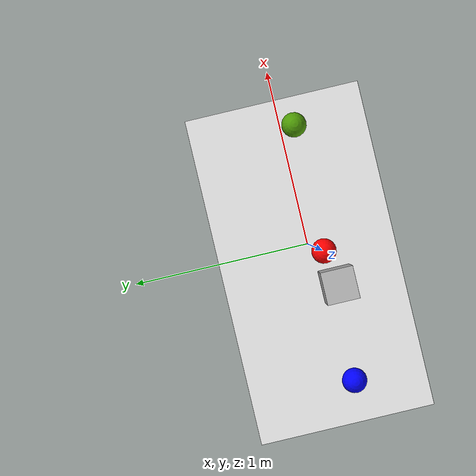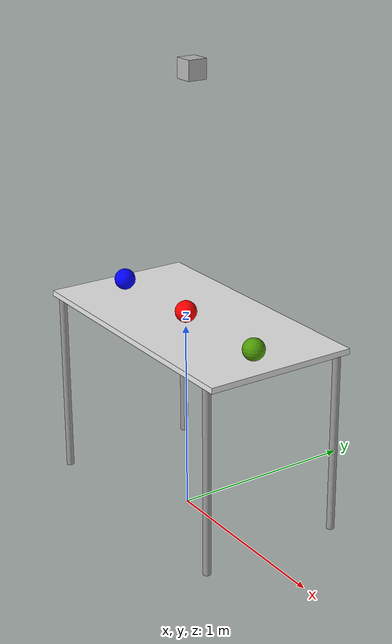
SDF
<?xml version='1.0'?>
<sdf version='1.7'>
  <model name='table_3balls_camera_v2'>
    <link name='Ball_Blue'>
      <inertial>
        <mass>0.0013865</mass>
        <inertia>
          <ixx>1.72e-06</ixx>
          <ixy>0</ixy>
          <ixz>0</ixz>
          <iyy>1.72e-06</iyy>
          <iyz>0</iyz>
          <izz>1.72e-06</izz>
        </inertia>
        <pose>0 0 0 0 -0 0</pose>
      </inertial>
      <pose>-0.591225 0 1.07207 0 -0 0</pose>
      <self_collide>0</self_collide>
      <enable_wind>0</enable_wind>
      <kinematic>0</kinematic>
      <gravity>1</gravity>
      <visual name='visual'>
        <pose>0 0 0 0 -0 0</pose>
        <geometry>
          <sphere>
            <radius>0.0557538</radius>
          </sphere>
        </geometry>
        <material>
          <lighting>1</lighting>
          <script>
            <uri>file://media/materials/scripts/gazebo.material</uri>
            <name>Gazebo/Grey</name>
          </script>
          <shader type='pixel'>
            <normal_map>__default__</normal_map>
          </shader>
          <diffuse>0 0 1 0</diffuse>
          <ambient>0.3 0.3 0.3 1</ambient>
          <specular>0.01 0.01 0.01 1</specular>
          <emissive>0 0 0 1</emissive>
        </material>
        <transparency>0</transparency>
        <cast_shadows>1</cast_shadows>
      </visual>
      <collision name='collision'>
        <laser_retro>0</laser_retro>
        <max_contacts>10</max_contacts>
        <pose>0 0 0 0 -0 0</pose>
        <geometry>
          <sphere>
            <radius>0.055754</radius>
          </sphere>
        </geometry>
        <surface>
          <friction>
            <ode>
              <mu>1</mu>
              <mu2>1</mu2>
              <fdir1>0 0 0</fdir1>
              <slip1>0</slip1>
              <slip2>0</slip2>
            </ode>
            <torsional>
              <coefficient>1</coefficient>
              <patch_radius>0</patch_radius>
              <surface_radius>0</surface_radius>
              <use_patch_radius>1</use_patch_radius>
              <ode>
                <slip>0</slip>
              </ode>
            </torsional>
          </friction>
          <bounce>
            <restitution_coefficient>0</restitution_coefficient>
            <threshold>1e+06</threshold>
          </bounce>
          <contact>
            <collide_without_contact>0</collide_without_contact>
            <collide_without_contact_bitmask>1</collide_without_contact_bitmask>
            <collide_bitmask>1</collide_bitmask>
            <ode>
              <soft_cfm>0</soft_cfm>
              <soft_erp>0.2</soft_erp>
              <kp>1e+13</kp>
              <kd>1</kd>
              <max_vel>0.01</max_vel>
              <min_depth>0</min_depth>
            </ode>
            <bullet>
              <split_impulse>1</split_impulse>
              <split_impulse_penetration_threshold>-0.01</split_impulse_penetration_threshold>
              <soft_cfm>0</soft_cfm>
              <soft_erp>0.2</soft_erp>
              <kp>1e+13</kp>
              <kd>1</kd>
            </bullet>
          </contact>
        </surface>
      </collision>
    </link>
    <link name='Ball_green'>
      <inertial>
        <mass>0.0013865</mass>
        <inertia>
          <ixx>1.72e-06</ixx>
          <ixy>0</ixy>
          <ixz>0</ixz>
          <iyy>1.72e-06</iyy>
          <iyz>0</iyz>
          <izz>1.72e-06</izz>
        </inertia>
        <pose>0 0 0 0 -0 0</pose>
      </inertial>
      <pose>0.575583 0 1.07792 0 -0 0</pose>
      <self_collide>0</self_collide>
      <enable_wind>0</enable_wind>
      <kinematic>0</kinematic>
      <gravity>1</gravity>
      <visual name='visual'>
        <pose>0 0 0 0 -0 0</pose>
        <geometry>
          <sphere>
            <radius>0.0557538</radius>
          </sphere>
        </geometry>
        <material>
          <lighting>1</lighting>
          <script>
            <uri>file://media/materials/scripts/gazebo.material</uri>
            <name>Gazebo/Grey</name>
          </script>
          <shader type='pixel'>
            <normal_map>__default__</normal_map>
          </shader>
          <ambient>0 1 0 0</ambient>
          <diffuse>0.306 0.604 0.024 1</diffuse>
          <specular>0.01 0.01 0.01 1</specular>
          <emissive>0 0 0 1</emissive>
        </material>
        <transparency>0</transparency>
        <cast_shadows>1</cast_shadows>
      </visual>
      <collision name='collision'>
        <laser_retro>0</laser_retro>
        <max_contacts>10</max_contacts>
        <pose>0 0 0 0 -0 0</pose>
        <geometry>
          <sphere>
            <radius>0.055754</radius>
          </sphere>
        </geometry>
        <surface>
          <friction>
            <ode>
              <mu>1</mu>
              <mu2>1</mu2>
              <fdir1>0 0 0</fdir1>
              <slip1>0</slip1>
              <slip2>0</slip2>
            </ode>
            <torsional>
              <coefficient>1</coefficient>
              <patch_radius>0</patch_radius>
              <surface_radius>0</surface_radius>
              <use_patch_radius>1</use_patch_radius>
              <ode>
                <slip>0</slip>
              </ode>
            </torsional>
          </friction>
          <bounce>
            <restitution_coefficient>0</restitution_coefficient>
            <threshold>1e+06</threshold>
          </bounce>
          <contact>
            <collide_without_contact>0</collide_without_contact>
            <collide_without_contact_bitmask>1</collide_without_contact_bitmask>
            <collide_bitmask>1</collide_bitmask>
            <ode>
              <soft_cfm>0</soft_cfm>
              <soft_erp>0.2</soft_erp>
              <kp>1e+13</kp>
              <kd>1</kd>
              <max_vel>0.01</max_vel>
              <min_depth>0</min_depth>
            </ode>
            <bullet>
              <split_impulse>1</split_impulse>
              <split_impulse_penetration_threshold>-0.01</split_impulse_penetration_threshold>
              <soft_cfm>0</soft_cfm>
              <soft_erp>0.2</soft_erp>
              <kp>1e+13</kp>
              <kd>1</kd>
            </bullet>
          </contact>
        </surface>
      </collision>
    </link>
    <link name='ball_red'>
      <inertial>
        <mass>0.0013865</mass>
        <inertia>
          <ixx>1.72e-06</ixx>
          <ixy>0</ixy>
          <ixz>0</ixz>
          <iyy>1.72e-06</iyy>
          <iyz>0</iyz>
          <izz>1.72e-06</izz>
        </inertia>
        <pose>0 0 0 0 -0 0</pose>
      </inertial>
      <pose>0 0 1.07989 0 -0 0</pose>
      <self_collide>0</self_collide>
      <enable_wind>0</enable_wind>
      <kinematic>0</kinematic>
      <gravity>1</gravity>
      <visual name='visual'>
        <pose>0 0 0 0 -0 0</pose>
        <geometry>
          <sphere>
            <radius>0.0557538</radius>
          </sphere>
        </geometry>
        <material>
          <lighting>1</lighting>
          <script>
            <uri>file://media/materials/scripts/gazebo.material</uri>
            <name>Gazebo/Grey</name>
          </script>
          <shader type='pixel'>
            <normal_map>__default__</normal_map>
          </shader>
          <ambient>1 0 0 0</ambient>
          <diffuse>0.7 0.7 0.7 1</diffuse>
          <specular>0.01 0.01 0.01 1</specular>
          <emissive>0 0 0 1</emissive>
        </material>
        <transparency>0</transparency>
        <cast_shadows>1</cast_shadows>
      </visual>
      <collision name='collision'>
        <laser_retro>0</laser_retro>
        <max_contacts>10</max_contacts>
        <pose>0 0 0 0 -0 0</pose>
        <geometry>
          <sphere>
            <radius>0.055754</radius>
          </sphere>
        </geometry>
        <surface>
          <friction>
            <ode>
              <mu>1</mu>
              <mu2>1</mu2>
              <fdir1>0 0 0</fdir1>
              <slip1>0</slip1>
              <slip2>0</slip2>
            </ode>
            <torsional>
              <coefficient>1</coefficient>
              <patch_radius>0</patch_radius>
              <surface_radius>0</surface_radius>
              <use_patch_radius>1</use_patch_radius>
              <ode>
                <slip>0</slip>
              </ode>
            </torsional>
          </friction>
          <bounce>
            <restitution_coefficient>0</restitution_coefficient>
            <threshold>1e+06</threshold>
          </bounce>
          <contact>
            <collide_without_contact>0</collide_without_contact>
            <collide_without_contact_bitmask>1</collide_without_contact_bitmask>
            <collide_bitmask>1</collide_bitmask>
            <ode>
              <soft_cfm>0</soft_cfm>
              <soft_erp>0.2</soft_erp>
              <kp>1e+13</kp>
              <kd>1</kd>
              <max_vel>0.01</max_vel>
              <min_depth>0</min_depth>
            </ode>
            <bullet>
              <split_impulse>1</split_impulse>
              <split_impulse_penetration_threshold>-0.01</split_impulse_penetration_threshold>
              <soft_cfm>0</soft_cfm>
              <soft_erp>0.2</soft_erp>
              <kp>1e+13</kp>
              <kd>1</kd>
            </bullet>
          </contact>
        </surface>
      </collision>
    </link>
    <link name='table'>
      <self_collide>0</self_collide>
      <enable_wind>0</enable_wind>
      <kinematic>0</kinematic>
      <pose>-0.040807 0.07129 0 0 -0 0</pose>
      <visual name='visual1'>
        <pose>0 0 1 0 -0 0</pose>
        <geometry>
          <box>
            <size>1.5 0.8 0.03</size>
          </box>
        </geometry>
        <material>
          <script>
            <uri>file://media/materials/scripts/gazebo.material</uri>
            <name>Gazebo/White</name>
          </script>
          <shader type='pixel'/>
          <emissive>0 0 0 1</emissive>
        </material>
        <transparency>0</transparency>
        <cast_shadows>1</cast_shadows>
      </visual>
      <visual name='back_right_leg'>
        <pose>-0.68 -0.38 0.5 0 -0 0</pose>
        <geometry>
          <cylinder>
            <radius>0.02</radius>
            <length>1</length>
          </cylinder>
        </geometry>
        <material>
          <script>
            <uri>file://media/materials/scripts/gazebo.material</uri>
            <name>Gazebo/Grey</name>
          </script>
          <shader type='pixel'/>
          <emissive>0 0 0 1</emissive>
        </material>
        <transparency>0</transparency>
        <cast_shadows>1</cast_shadows>
      </visual>
      <visual name='back_left_leg'>
        <pose>-0.68 0.38 0.5 0 -0 0</pose>
        <geometry>
          <cylinder>
            <radius>0.02</radius>
            <length>1</length>
          </cylinder>
        </geometry>
        <material>
          <script>
            <uri>file://media/materials/scripts/gazebo.material</uri>
            <name>Gazebo/Grey</name>
          </script>
          <shader type='pixel'/>
          <emissive>0 0 0 1</emissive>
        </material>
        <transparency>0</transparency>
        <cast_shadows>1</cast_shadows>
      </visual>
      <visual name='front_left_leg'>
        <pose>0.68 0.38 0.5 0 -0 0</pose>
        <geometry>
          <cylinder>
            <radius>0.02</radius>
            <length>1</length>
          </cylinder>
        </geometry>
        <material>
          <script>
            <uri>file://media/materials/scripts/gazebo.material</uri>
            <name>Gazebo/Grey</name>
          </script>
          <shader type='pixel'/>
          <emissive>0 0 0 1</emissive>
        </material>
        <transparency>0</transparency>
        <cast_shadows>1</cast_shadows>
      </visual>
      <visual name='front_right_leg'>
        <pose>0.68 -0.38 0.5 0 -0 0</pose>
        <geometry>
          <cylinder>
            <radius>0.02</radius>
            <length>1</length>
          </cylinder>
        </geometry>
        <material>
          <script>
            <uri>file://media/materials/scripts/gazebo.material</uri>
            <name>Gazebo/Grey</name>
          </script>
          <shader type='pixel'/>
          <emissive>0 0 0 1</emissive>
        </material>
        <transparency>0</transparency>
        <cast_shadows>1</cast_shadows>
      </visual>
      <collision name='back_left_leg'>
        <laser_retro>0</laser_retro>
        <max_contacts>10</max_contacts>
        <pose>-0.68 0.38 0.5 0 -0 0</pose>
        <geometry>
          <cylinder>
            <radius>0.02</radius>
            <length>1</length>
          </cylinder>
        </geometry>
        <surface>
          <friction>
            <ode>
              <mu>1</mu>
              <mu2>1</mu2>
              <fdir1>0 0 0</fdir1>
              <slip1>0</slip1>
              <slip2>0</slip2>
            </ode>
            <torsional>
              <coefficient>1</coefficient>
              <patch_radius>0</patch_radius>
              <surface_radius>0</surface_radius>
              <use_patch_radius>1</use_patch_radius>
              <ode>
                <slip>0</slip>
              </ode>
            </torsional>
          </friction>
          <bounce>
            <restitution_coefficient>0</restitution_coefficient>
            <threshold>1e+06</threshold>
          </bounce>
          <contact>
            <collide_without_contact>0</collide_without_contact>
            <collide_without_contact_bitmask>1</collide_without_contact_bitmask>
            <collide_bitmask>1</collide_bitmask>
            <ode>
              <soft_cfm>0</soft_cfm>
              <soft_erp>0.2</soft_erp>
              <kp>1e+13</kp>
              <kd>1</kd>
              <max_vel>0.01</max_vel>
              <min_depth>0</min_depth>
            </ode>
            <bullet>
              <split_impulse>1</split_impulse>
              <split_impulse_penetration_threshold>-0.01</split_impulse_penetration_threshold>
              <soft_cfm>0</soft_cfm>
              <soft_erp>0.2</soft_erp>
              <kp>1e+13</kp>
              <kd>1</kd>
            </bullet>
          </contact>
        </surface>
      </collision>
      <collision name='back_right_leg'>
        <laser_retro>0</laser_retro>
        <max_contacts>10</max_contacts>
        <pose>-0.68 -0.38 0.5 0 -0 0</pose>
        <geometry>
          <cylinder>
            <radius>0.02</radius>
            <length>1</length>
          </cylinder>
        </geometry>
        <surface>
          <friction>
            <ode>
              <mu>1</mu>
              <mu2>1</mu2>
              <fdir1>0 0 0</fdir1>
              <slip1>0</slip1>
              <slip2>0</slip2>
            </ode>
            <torsional>
              <coefficient>1</coefficient>
              <patch_radius>0</patch_radius>
              <surface_radius>0</surface_radius>
              <use_patch_radius>1</use_patch_radius>
              <ode>
                <slip>0</slip>
              </ode>
            </torsional>
          </friction>
          <bounce>
            <restitution_coefficient>0</restitution_coefficient>
            <threshold>1e+06</threshold>
          </bounce>
          <contact>
            <collide_without_contact>0</collide_without_contact>
            <collide_without_contact_bitmask>1</collide_without_contact_bitmask>
            <collide_bitmask>1</collide_bitmask>
            <ode>
              <soft_cfm>0</soft_cfm>
              <soft_erp>0.2</soft_erp>
              <kp>1e+13</kp>
              <kd>1</kd>
              <max_vel>0.01</max_vel>
              <min_depth>0</min_depth>
            </ode>
            <bullet>
              <split_impulse>1</split_impulse>
              <split_impulse_penetration_threshold>-0.01</split_impulse_penetration_threshold>
              <soft_cfm>0</soft_cfm>
              <soft_erp>0.2</soft_erp>
              <kp>1e+13</kp>
              <kd>1</kd>
            </bullet>
          </contact>
        </surface>
      </collision>
      <collision name='front_right_leg'>
        <laser_retro>0</laser_retro>
        <max_contacts>10</max_contacts>
        <pose>0.68 -0.38 0.5 0 -0 0</pose>
        <geometry>
          <cylinder>
            <radius>0.02</radius>
            <length>1</length>
          </cylinder>
        </geometry>
        <surface>
          <friction>
            <ode>
              <mu>1</mu>
              <mu2>1</mu2>
              <fdir1>0 0 0</fdir1>
              <slip1>0</slip1>
              <slip2>0</slip2>
            </ode>
            <torsional>
              <coefficient>1</coefficient>
              <patch_radius>0</patch_radius>
              <surface_radius>0</surface_radius>
              <use_patch_radius>1</use_patch_radius>
              <ode>
                <slip>0</slip>
              </ode>
            </torsional>
          </friction>
          <bounce>
            <restitution_coefficient>0</restitution_coefficient>
            <threshold>1e+06</threshold>
          </bounce>
          <contact>
            <collide_without_contact>0</collide_without_contact>
            <collide_without_contact_bitmask>1</collide_without_contact_bitmask>
            <collide_bitmask>1</collide_bitmask>
            <ode>
              <soft_cfm>0</soft_cfm>
              <soft_erp>0.2</soft_erp>
              <kp>1e+13</kp>
              <kd>1</kd>
              <max_vel>0.01</max_vel>
              <min_depth>0</min_depth>
            </ode>
            <bullet>
              <split_impulse>1</split_impulse>
              <split_impulse_penetration_threshold>-0.01</split_impulse_penetration_threshold>
              <soft_cfm>0</soft_cfm>
              <soft_erp>0.2</soft_erp>
              <kp>1e+13</kp>
              <kd>1</kd>
            </bullet>
          </contact>
        </surface>
      </collision>
      <collision name='surface'>
        <laser_retro>0</laser_retro>
        <max_contacts>10</max_contacts>
        <pose>0 0 1 0 -0 0</pose>
        <geometry>
          <box>
            <size>1.5 0.8 0.03</size>
          </box>
        </geometry>
        <surface>
          <friction>
            <ode>
              <mu>0.6</mu>
              <mu2>0.6</mu2>
              <fdir1>0 0 0</fdir1>
              <slip1>0</slip1>
              <slip2>0</slip2>
            </ode>
            <torsional>
              <coefficient>1</coefficient>
              <patch_radius>0</patch_radius>
              <surface_radius>0</surface_radius>
              <use_patch_radius>1</use_patch_radius>
              <ode>
                <slip>0</slip>
              </ode>
            </torsional>
          </friction>
          <bounce>
            <restitution_coefficient>0</restitution_coefficient>
            <threshold>1e+06</threshold>
          </bounce>
          <contact>
            <collide_without_contact>0</collide_without_contact>
            <collide_without_contact_bitmask>1</collide_without_contact_bitmask>
            <collide_bitmask>1</collide_bitmask>
            <ode>
              <soft_cfm>0</soft_cfm>
              <soft_erp>0.2</soft_erp>
              <kp>1e+13</kp>
              <kd>1</kd>
              <max_vel>0.01</max_vel>
              <min_depth>0</min_depth>
            </ode>
            <bullet>
              <split_impulse>1</split_impulse>
              <split_impulse_penetration_threshold>-0.01</split_impulse_penetration_threshold>
              <soft_cfm>0</soft_cfm>
              <soft_erp>0.2</soft_erp>
              <kp>1e+13</kp>
              <kd>1</kd>
            </bullet>
          </contact>
        </surface>
      </collision>
      <collision name='front_left_leg'>
        <laser_retro>0</laser_retro>
        <max_contacts>10</max_contacts>
        <pose>0.68 0.38 0.5 0 -0 0</pose>
        <geometry>
          <cylinder>
            <radius>0.02</radius>
            <length>1</length>
          </cylinder>
        </geometry>
        <surface>
          <friction>
            <ode>
              <mu>1</mu>
              <mu2>1</mu2>
              <fdir1>0 0 0</fdir1>
              <slip1>0</slip1>
              <slip2>0</slip2>
            </ode>
            <torsional>
              <coefficient>1</coefficient>
              <patch_radius>0</patch_radius>
              <surface_radius>0</surface_radius>
              <use_patch_radius>1</use_patch_radius>
              <ode>
                <slip>0</slip>
              </ode>
            </torsional>
          </friction>
          <bounce>
            <restitution_coefficient>0</restitution_coefficient>
            <threshold>1e+06</threshold>
          </bounce>
          <contact>
            <collide_without_contact>0</collide_without_contact>
            <collide_without_contact_bitmask>1</collide_without_contact_bitmask>
            <collide_bitmask>1</collide_bitmask>
            <ode>
              <soft_cfm>0</soft_cfm>
              <soft_erp>0.2</soft_erp>
              <kp>1e+13</kp>
              <kd>1</kd>
              <max_vel>0.01</max_vel>
              <min_depth>0</min_depth>
            </ode>
            <bullet>
              <split_impulse>1</split_impulse>
              <split_impulse_penetration_threshold>-0.01</split_impulse_penetration_threshold>
              <soft_cfm>0</soft_cfm>
              <soft_erp>0.2</soft_erp>
              <kp>1e+13</kp>
              <kd>1</kd>
            </bullet>
          </contact>
        </surface>
      </collision>
    </link>
    <model name='camera'>
      <pose>-0.040807 0.071288 2.27968 3.13216 1.57079 -1.58023</pose>
      <link name='link'>
        <inertial>
          <mass>0.1</mass>
          <inertia>
            <ixx>0.000166667</ixx>
            <iyy>0.000166667</iyy>
            <izz>0.000166667</izz>
            <ixy>0</ixy>
            <ixz>0</ixz>
            <iyz>0</iyz>
          </inertia>
          <pose>0 0 0 0 -0 0</pose>
        </inertial>
        <collision name='collision'>
          <geometry>
            <box>
              <size>0.1 0.1 0.1</size>
            </box>
          </geometry>
          <max_contacts>10</max_contacts>
          <surface>
            <contact>
              <ode/>
            </contact>
            <bounce/>
            <friction>
              <torsional>
                <ode/>
              </torsional>
              <ode/>
            </friction>
          </surface>
        </collision>
        <visual name='visual'>
          <geometry>
            <box>
              <size>0.1 0.1 0.1</size>
            </box>
          </geometry>
        </visual>
        <sensor name='camera' type='camera'>
          <camera>
            <horizontal_fov>1.047</horizontal_fov>
            <image>
              <width>320</width>
              <height>240</height>
            </image>
            <clip>
              <near>0.1</near>
              <far>100</far>
            </clip>
          </camera>
          <always_on>1</always_on>
          <update_rate>30</update_rate>
          <visualize>1</visualize>
          <plugin name='camera_plugin' filename='libgazebo_ros_camera.so'>
            <ros>
              <namespace>top_down_cam</namespace>
              <remapping>image_raw:=custom_img</remapping>
              <remapping>camera_info:=custom_info</remapping>
            </ros>
            <camera_name>custom_rgb</camera_name>
            <frame_name>camera_rgb_frame</frame_name>
            <hack_baseline>0.07</hack_baseline>
          </plugin>
        </sensor>
        <self_collide>0</self_collide>
        <enable_wind>0</enable_wind>
        <kinematic>0</kinematic>
      </link>
    </model>
    <joint name='link_JOINT_0' type='fixed'>
      <parent>camera::link</parent>
      <child>table</child>
      <pose>0 0 0 0 -0 0</pose>
      <physics>
        <ode>
          <limit>
            <cfm>0</cfm>
            <erp>0.2</erp>
          </limit>
          <suspension>
            <cfm>0</cfm>
            <erp>0.2</erp>
          </suspension>
        </ode>
      </physics>
    </joint>
    <static>1</static>
    <allow_auto_disable>1</allow_auto_disable>
  </model>
</sdf>
